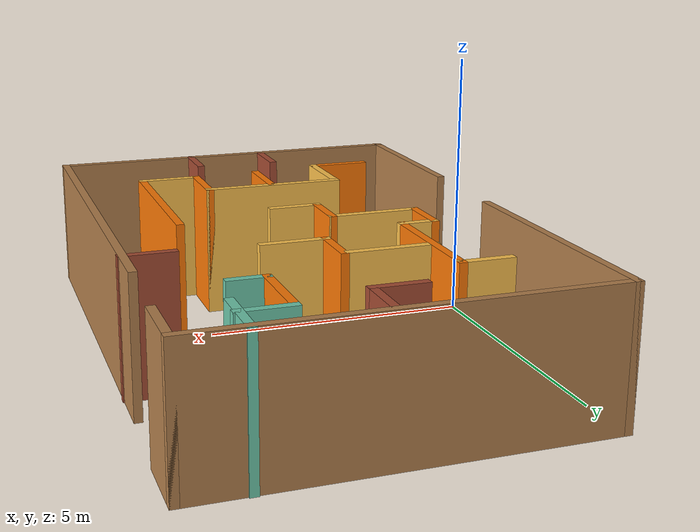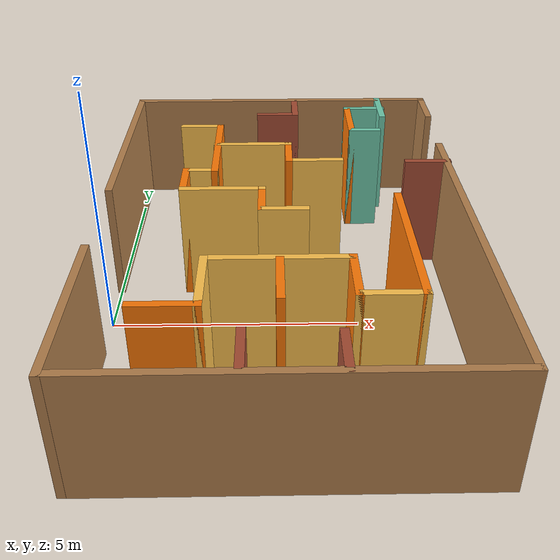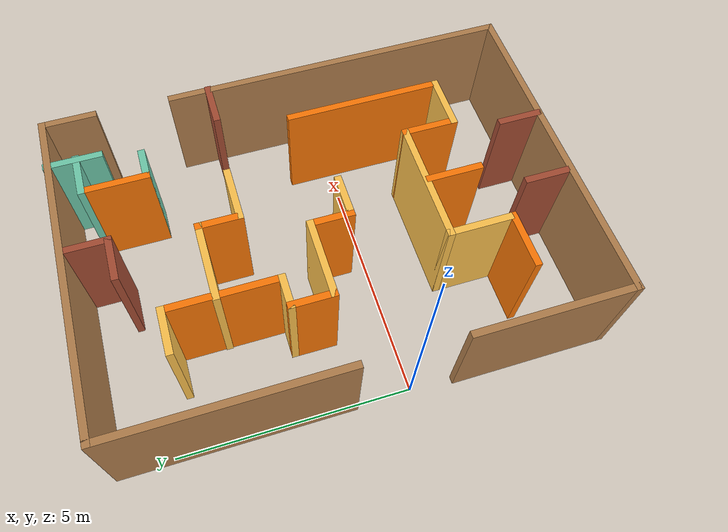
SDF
<?xml version='1.0'?>
<sdf version='1.7'>
  <model name='Maze'>
    <pose>3.51522 0.907565 0 0 -0 0</pose>
    <link name='Wall_10'>
      <collision name='Wall_10_Collision'>
        <geometry>
          <box>
            <size>1 0.15 2.5</size>
          </box>
        </geometry>
        <pose>0 0 1.25 0 -0 0</pose>
      </collision>
      <visual name='Wall_10_Visual'>
        <pose>0 0 1.25 0 -0 0</pose>
        <geometry>
          <box>
            <size>1 0.15 2.5</size>
          </box>
        </geometry>
        <material>
          <script>
            <uri>file://media/materials/scripts/gazebo.material</uri>
            <name>Gazebo/Grey</name>
          </script>
          <ambient>1 0.764706 0.305882 1</ambient>
        </material>
        <meta>
          <layer>0</layer>
        </meta>
      </visual>
      <pose>-1.875 3.53933 0 0 -0 0</pose>
    </link>
    <link name='Wall_11'>
      <collision name='Wall_11_Collision'>
        <geometry>
          <box>
            <size>2.5 0.15 2.5</size>
          </box>
        </geometry>
        <pose>0 0 1.25 0 -0 0</pose>
      </collision>
      <visual name='Wall_11_Visual'>
        <pose>0 0 1.25 0 -0 0</pose>
        <geometry>
          <box>
            <size>2.5 0.15 2.5</size>
          </box>
        </geometry>
        <material>
          <script>
            <uri>file://media/materials/scripts/gazebo.material</uri>
            <name>Gazebo/Grey</name>
          </script>
          <ambient>0.996078 0.47451 0.0196078 1</ambient>
        </material>
        <meta>
          <layer>0</layer>
        </meta>
      </visual>
      <pose>-1.45 2.36433 0 0 -0 -1.5708</pose>
    </link>
    <link name='Wall_12'>
      <collision name='Wall_12_Collision'>
        <geometry>
          <box>
            <size>0.75 0.15 2.5</size>
          </box>
        </geometry>
        <pose>0 0 1.25 0 -0 0</pose>
      </collision>
      <visual name='Wall_12_Visual'>
        <pose>0 0 1.25 0 -0 0</pose>
        <geometry>
          <box>
            <size>0.75 0.15 2.5</size>
          </box>
        </geometry>
        <material>
          <script>
            <uri>file://media/materials/scripts/gazebo.material</uri>
            <name>Gazebo/Grey</name>
          </script>
          <ambient>1 0.764706 0.305882 1</ambient>
        </material>
        <meta>
          <layer>0</layer>
        </meta>
      </visual>
      <pose>-1.75 1.18933 0 0 -0 3.14159</pose>
    </link>
    <link name='Wall_13'>
      <collision name='Wall_13_Collision'>
        <geometry>
          <box>
            <size>1 0.15 2.5</size>
          </box>
        </geometry>
        <pose>0 0 1.25 0 -0 0</pose>
      </collision>
      <visual name='Wall_13_Visual'>
        <pose>0 0 1.25 0 -0 0</pose>
        <geometry>
          <box>
            <size>1 0.15 2.5</size>
          </box>
        </geometry>
        <material>
          <script>
            <uri>file://media/materials/scripts/gazebo.material</uri>
            <name>Gazebo/Grey</name>
          </script>
          <ambient>0.996078 0.47451 0.0196078 1</ambient>
        </material>
        <meta>
          <layer>0</layer>
        </meta>
      </visual>
      <pose>-2.05 0.764334 0 0 -0 -1.5708</pose>
    </link>
    <link name='Wall_14'>
      <collision name='Wall_14_Collision'>
        <geometry>
          <box>
            <size>1.75 0.15 2.5</size>
          </box>
        </geometry>
        <pose>0 0 1.25 0 -0 0</pose>
      </collision>
      <visual name='Wall_14_Visual'>
        <pose>0 0 1.25 0 -0 0</pose>
        <geometry>
          <box>
            <size>1.75 0.15 2.5</size>
          </box>
        </geometry>
        <material>
          <script>
            <uri>file://media/materials/scripts/gazebo.material</uri>
            <name>Gazebo/Grey</name>
          </script>
          <ambient>1 0.764706 0.305882 1</ambient>
        </material>
        <meta>
          <layer>0</layer>
        </meta>
      </visual>
      <pose>-1.25 0.339334 0 0 -0 0</pose>
    </link>
    <link name='Wall_15'>
      <collision name='Wall_15_Collision'>
        <geometry>
          <box>
            <size>1 0.15 2.5</size>
          </box>
        </geometry>
        <pose>0 0 1.25 0 -0 0</pose>
      </collision>
      <visual name='Wall_15_Visual'>
        <pose>0 0 1.25 0 -0 0</pose>
        <geometry>
          <box>
            <size>1 0.15 2.5</size>
          </box>
        </geometry>
        <material>
          <script>
            <uri>file://media/materials/scripts/gazebo.material</uri>
            <name>Gazebo/Grey</name>
          </script>
          <ambient>0.996078 0.47451 0.0196078 1</ambient>
        </material>
        <meta>
          <layer>0</layer>
        </meta>
      </visual>
      <pose>-0.45 -0.085666 0 0 -0 -1.5708</pose>
    </link>
    <link name='Wall_16'>
      <collision name='Wall_16_Collision'>
        <geometry>
          <box>
            <size>1 0.15 2.5</size>
          </box>
        </geometry>
        <pose>0 0 1.25 0 -0 0</pose>
      </collision>
      <visual name='Wall_16_Visual'>
        <pose>0 0 1.25 0 -0 0</pose>
        <geometry>
          <box>
            <size>1 0.15 2.5</size>
          </box>
        </geometry>
        <material>
          <script>
            <uri>file://media/materials/scripts/gazebo.material</uri>
            <name>Gazebo/Grey</name>
          </script>
          <ambient>1 0.764706 0.305882 1</ambient>
        </material>
        <meta>
          <layer>0</layer>
        </meta>
      </visual>
      <pose>-0.025 -0.510666 0 0 -0 0</pose>
    </link>
    <link name='Wall_2'>
      <collision name='Wall_2_Collision'>
        <geometry>
          <box>
            <size>5 0.15 2.5</size>
          </box>
        </geometry>
        <pose>0 0 1.25 0 -0 0</pose>
      </collision>
      <visual name='Wall_2_Visual'>
        <pose>0 0 1.25 0 -0 0</pose>
        <geometry>
          <box>
            <size>5 0.15 2.5</size>
          </box>
        </geometry>
        <material>
          <script>
            <uri>file://media/materials/scripts/gazebo.material</uri>
            <name>Gazebo/Wood</name>
          </script>
          <ambient>1 1 1 1</ambient>
        </material>
        <meta>
          <layer>0</layer>
        </meta>
      </visual>
      <pose>-3.52667 2.775 0 0 -0 1.5708</pose>
    </link>
    <link name='Wall_20'>
      <collision name='Wall_20_Collision'>
        <geometry>
          <box>
            <size>1 0.15 2.5</size>
          </box>
        </geometry>
        <pose>0 0 1.25 0 -0 0</pose>
      </collision>
      <visual name='Wall_20_Visual'>
        <pose>0 0 1.25 0 -0 0</pose>
        <geometry>
          <box>
            <size>1 0.15 2.5</size>
          </box>
        </geometry>
        <material>
          <script>
            <uri>file://media/materials/scripts/gazebo.material</uri>
            <name>Gazebo/Bricks</name>
          </script>
          <ambient>1 1 1 1</ambient>
        </material>
        <meta>
          <layer>0</layer>
        </meta>
      </visual>
      <pose>0.337333 4.67833 0 0 -0 -1.5708</pose>
    </link>
    <link name='Wall_21'>
      <collision name='Wall_21_Collision'>
        <geometry>
          <box>
            <size>1 0.15 2.5</size>
          </box>
        </geometry>
        <pose>0 0 1.25 0 -0 0</pose>
      </collision>
      <visual name='Wall_21_Visual'>
        <pose>0 0 1.25 0 -0 0</pose>
        <geometry>
          <box>
            <size>1 0.15 2.5</size>
          </box>
        </geometry>
        <material>
          <script>
            <uri>file://media/materials/scripts/gazebo.material</uri>
            <name>Gazebo/Bricks</name>
          </script>
          <ambient>1 1 1 1</ambient>
        </material>
        <meta>
          <layer>0</layer>
        </meta>
      </visual>
      <pose>-0.087667 4.25333 0 0 -0 3.14159</pose>
    </link>
    <link name='Wall_23'>
      <collision name='Wall_23_Collision'>
        <geometry>
          <box>
            <size>1.25 0.15 2.5</size>
          </box>
        </geometry>
        <pose>0 0 1.25 0 -0 0</pose>
      </collision>
      <visual name='Wall_23_Visual'>
        <pose>0 0 1.25 0 -0 0</pose>
        <geometry>
          <box>
            <size>1.25 0.15 2.5</size>
          </box>
        </geometry>
        <material>
          <script>
            <uri>file://media/materials/scripts/gazebo.material</uri>
            <name>Gazebo/Grey</name>
          </script>
          <ambient>0.996078 0.47451 0.0196078 1</ambient>
        </material>
        <meta>
          <layer>0</layer>
        </meta>
      </visual>
      <pose>-1.99533 -3.606 0 0 -0 0</pose>
    </link>
    <link name='Wall_24'>
      <collision name='Wall_24_Collision'>
        <geometry>
          <box>
            <size>1.5 0.15 2.5</size>
          </box>
        </geometry>
        <pose>0 0 1.25 0 -0 0</pose>
      </collision>
      <visual name='Wall_24_Visual'>
        <pose>0 0 1.25 0 -0 0</pose>
        <geometry>
          <box>
            <size>1.5 0.15 2.5</size>
          </box>
        </geometry>
        <material>
          <script>
            <uri>file://media/materials/scripts/gazebo.material</uri>
            <name>Gazebo/Grey</name>
          </script>
          <ambient>1 0.764706 0.305882 1</ambient>
        </material>
        <meta>
          <layer>0</layer>
        </meta>
      </visual>
      <pose>-1.44533 -2.931 0 0 -0 1.5708</pose>
    </link>
    <link name='Wall_25'>
      <collision name='Wall_25_Collision'>
        <geometry>
          <box>
            <size>2.75 0.15 2.5</size>
          </box>
        </geometry>
        <pose>0 0 1.25 0 -0 0</pose>
      </collision>
      <visual name='Wall_25_Visual'>
        <pose>0 0 1.25 0 -0 0</pose>
        <geometry>
          <box>
            <size>2.75 0.15 2.5</size>
          </box>
        </geometry>
        <material>
          <script>
            <uri>file://media/materials/scripts/gazebo.material</uri>
            <name>Gazebo/Grey</name>
          </script>
          <ambient>1 0.764706 0.305882 1</ambient>
        </material>
        <meta>
          <layer>0</layer>
        </meta>
      </visual>
      <pose>-0.145333 -2.256 0 0 -0 0</pose>
    </link>
    <link name='Wall_26'>
      <collision name='Wall_26_Collision'>
        <geometry>
          <box>
            <size>1.25 0.15 2.5</size>
          </box>
        </geometry>
        <pose>0 0 1.25 0 -0 0</pose>
      </collision>
      <visual name='Wall_26_Visual'>
        <pose>0 0 1.25 0 -0 0</pose>
        <geometry>
          <box>
            <size>1.25 0.15 2.5</size>
          </box>
        </geometry>
        <material>
          <script>
            <uri>file://media/materials/scripts/gazebo.material</uri>
            <name>Gazebo/Grey</name>
          </script>
          <ambient>0.996078 0.47451 0.0196078 1</ambient>
        </material>
        <meta>
          <layer>0</layer>
        </meta>
      </visual>
      <pose>1.15467 -2.806 0 0 -0 -1.5708</pose>
    </link>
    <link name='Wall_27'>
      <collision name='Wall_27_Collision'>
        <geometry>
          <box>
            <size>1.25 0.15 2.5</size>
          </box>
        </geometry>
        <pose>0 0 1.25 0 -0 0</pose>
      </collision>
      <visual name='Wall_27_Visual'>
        <pose>0 0 1.25 0 -0 0</pose>
        <geometry>
          <box>
            <size>1.25 0.15 2.5</size>
          </box>
        </geometry>
        <material>
          <script>
            <uri>file://media/materials/scripts/gazebo.material</uri>
            <name>Gazebo/Grey</name>
          </script>
          <ambient>1 0.764706 0.305882 1</ambient>
        </material>
        <meta>
          <layer>0</layer>
        </meta>
      </visual>
      <pose>1.70467 -3.356 0 0 -0 0</pose>
    </link>
    <link name='Wall_28'>
      <collision name='Wall_28_Collision'>
        <geometry>
          <box>
            <size>3.5 0.15 2.5</size>
          </box>
        </geometry>
        <pose>0 0 1.25 0 -0 0</pose>
      </collision>
      <visual name='Wall_28_Visual'>
        <pose>0 0 1.25 0 -0 0</pose>
        <geometry>
          <box>
            <size>3.5 0.15 2.5</size>
          </box>
        </geometry>
        <material>
          <script>
            <uri>file://media/materials/scripts/gazebo.material</uri>
            <name>Gazebo/Grey</name>
          </script>
          <ambient>0.996078 0.47451 0.0196078 1</ambient>
        </material>
        <meta>
          <layer>0</layer>
        </meta>
      </visual>
      <pose>2.25467 -1.681 0 0 -0 1.5708</pose>
    </link>
    <link name='Wall_3'>
      <collision name='Wall_3_Collision'>
        <geometry>
          <box>
            <size>7.25 0.15 2.5</size>
          </box>
        </geometry>
        <pose>0 0 1.25 0 -0 0</pose>
      </collision>
      <visual name='Wall_3_Visual'>
        <pose>0 0 1.25 0 -0 0</pose>
        <geometry>
          <box>
            <size>7.25 0.15 2.5</size>
          </box>
        </geometry>
        <material>
          <script>
            <uri>file://media/materials/scripts/gazebo.material</uri>
            <name>Gazebo/Wood</name>
          </script>
          <ambient>1 1 1 1</ambient>
        </material>
        <meta>
          <layer>0</layer>
        </meta>
      </visual>
      <pose>0.023333 5.2 0 0 -0 0</pose>
    </link>
    <link name='Wall_30'>
      <collision name='Wall_30_Collision'>
        <geometry>
          <box>
            <size>1.25 0.15 2.5</size>
          </box>
        </geometry>
        <pose>0 0 1.25 0 -0 0</pose>
      </collision>
      <visual name='Wall_30_Visual'>
        <pose>0 0 1.25 0 -0 0</pose>
        <geometry>
          <box>
            <size>1.25 0.15 2.5</size>
          </box>
        </geometry>
        <material>
          <script>
            <uri>file://media/materials/scripts/gazebo.material</uri>
            <name>Gazebo/Grey</name>
          </script>
          <ambient>0.996078 0.47451 0.0196078 1</ambient>
        </material>
        <meta>
          <layer>0</layer>
        </meta>
      </visual>
      <pose>-0.122667 -2.868 0 0 -0 -1.5708</pose>
    </link>
    <link name='Wall_32'>
      <collision name='Wall_32_Collision'>
        <geometry>
          <box>
            <size>1 0.15 2.5</size>
          </box>
        </geometry>
        <pose>0 0 1.25 0 -0 0</pose>
      </collision>
      <visual name='Wall_32_Visual'>
        <pose>0 0 1.25 0 -0 0</pose>
        <geometry>
          <box>
            <size>1 0.15 2.5</size>
          </box>
        </geometry>
        <material>
          <script>
            <uri>file://media/materials/scripts/gazebo.material</uri>
            <name>Gazebo/Bricks</name>
          </script>
          <ambient>1 1 1 1</ambient>
        </material>
        <meta>
          <layer>0</layer>
        </meta>
      </visual>
      <pose>-0.736 -4.68367 0 0 -0 1.5708</pose>
    </link>
    <link name='Wall_34'>
      <collision name='Wall_34_Collision'>
        <geometry>
          <box>
            <size>1 0.15 2.5</size>
          </box>
        </geometry>
        <pose>0 0 1.25 0 -0 0</pose>
      </collision>
      <visual name='Wall_34_Visual'>
        <pose>0 0 1.25 0 -0 0</pose>
        <geometry>
          <box>
            <size>1 0.15 2.5</size>
          </box>
        </geometry>
        <material>
          <script>
            <uri>file://media/materials/scripts/gazebo.material</uri>
            <name>Gazebo/Bricks</name>
          </script>
          <ambient>1 1 1 1</ambient>
        </material>
        <meta>
          <layer>0</layer>
        </meta>
      </visual>
      <pose>0.828 -4.77567 0 0 -0 1.5708</pose>
    </link>
    <link name='Wall_36'>
      <collision name='Wall_36_Collision'>
        <geometry>
          <box>
            <size>1.75 0.15 2.5</size>
          </box>
        </geometry>
        <pose>0 0 1.25 0 -0 0</pose>
      </collision>
      <visual name='Wall_36_Visual'>
        <pose>0 0 1.25 0 -0 0</pose>
        <geometry>
          <box>
            <size>1.75 0.15 2.5</size>
          </box>
        </geometry>
        <material>
          <script>
            <uri>file://media/materials/scripts/gazebo.material</uri>
            <name>Gazebo/Grey</name>
          </script>
          <ambient>1 0.764706 0.305882 1</ambient>
        </material>
        <meta>
          <layer>0</layer>
        </meta>
      </visual>
      <pose>-0.672 2.49667 0 0 -0 0</pose>
    </link>
    <link name='Wall_37'>
      <collision name='Wall_37_Collision'>
        <geometry>
          <box>
            <size>1 0.15 2.5</size>
          </box>
        </geometry>
        <pose>0 0 1.25 0 -0 0</pose>
      </collision>
      <visual name='Wall_37_Visual'>
        <pose>0 0 1.25 0 -0 0</pose>
        <geometry>
          <box>
            <size>1 0.15 2.5</size>
          </box>
        </geometry>
        <material>
          <script>
            <uri>file://media/materials/scripts/gazebo.material</uri>
            <name>Gazebo/Grey</name>
          </script>
          <ambient>0.996078 0.47451 0.0196078 1</ambient>
        </material>
        <meta>
          <layer>0</layer>
        </meta>
      </visual>
      <pose>0.128 2.07167 0 0 -0 -1.5708</pose>
    </link>
    <link name='Wall_38'>
      <collision name='Wall_38_Collision'>
        <geometry>
          <box>
            <size>1.25 0.15 2.5</size>
          </box>
        </geometry>
        <pose>0 0 1.25 0 -0 0</pose>
      </collision>
      <visual name='Wall_38_Visual'>
        <pose>0 0 1.25 0 -0 0</pose>
        <geometry>
          <box>
            <size>1.25 0.15 2.5</size>
          </box>
        </geometry>
        <material>
          <script>
            <uri>file://media/materials/scripts/gazebo.material</uri>
            <name>Gazebo/Grey</name>
          </script>
          <ambient>1 0.764706 0.305882 1</ambient>
        </material>
        <meta>
          <layer>0</layer>
        </meta>
      </visual>
      <pose>0.678 1.64667 0 0 -0 0</pose>
    </link>
    <link name='Wall_4'>
      <collision name='Wall_4_Collision'>
        <geometry>
          <box>
            <size>1.25 0.15 2.5</size>
          </box>
        </geometry>
        <pose>0 0 1.25 0 -0 0</pose>
      </collision>
      <visual name='Wall_4_Visual'>
        <pose>0 0 1.25 0 -0 0</pose>
        <geometry>
          <box>
            <size>1.25 0.15 2.5</size>
          </box>
        </geometry>
        <material>
          <script>
            <uri>file://media/materials/scripts/gazebo.material</uri>
            <name>Gazebo/Wood</name>
          </script>
          <ambient>1 1 1 1</ambient>
        </material>
        <meta>
          <layer>0</layer>
        </meta>
      </visual>
      <pose>3.57333 4.65 0 0 -0 -1.5708</pose>
    </link>
    <link name='Wall_40'>
      <collision name='Wall_40_Collision'>
        <geometry>
          <box>
            <size>1.25 0.15 2.5</size>
          </box>
        </geometry>
        <pose>0 0 1.25 0 -0 0</pose>
      </collision>
      <visual name='Wall_40_Visual'>
        <pose>0 0 1.25 0 -0 0</pose>
        <geometry>
          <box>
            <size>1.25 0.15 2.5</size>
          </box>
        </geometry>
        <material>
          <script>
            <uri>file://media/materials/scripts/gazebo.material</uri>
            <name>Gazebo/Grey</name>
          </script>
          <ambient>0.435294 0.796078 0.67451 1</ambient>
        </material>
        <meta>
          <layer>0</layer>
        </meta>
      </visual>
      <pose>2.45333 4.676 0 0 -0 -1.5708</pose>
    </link>
    <link name='Wall_42'>
      <collision name='Wall_42_Collision'>
        <geometry>
          <box>
            <size>1 0.15 2.5</size>
          </box>
        </geometry>
        <pose>0 0 1.25 0 -0 0</pose>
      </collision>
      <visual name='Wall_42_Visual'>
        <pose>0 0 1.25 0 -0 0</pose>
        <geometry>
          <box>
            <size>1 0.15 2.5</size>
          </box>
        </geometry>
        <material>
          <script>
            <uri>file://media/materials/scripts/gazebo.material</uri>
            <name>Gazebo/Grey</name>
          </script>
          <ambient>0.435294 0.796078 0.67451 1</ambient>
        </material>
        <meta>
          <layer>0</layer>
        </meta>
      </visual>
      <pose>2.059 4.61267 0 0 -0 3.14159</pose>
    </link>
    <link name='Wall_43'>
      <collision name='Wall_43_Collision'>
        <geometry>
          <box>
            <size>1.5 0.15 2.5</size>
          </box>
        </geometry>
        <pose>0 0 1.25 0 -0 0</pose>
      </collision>
      <visual name='Wall_43_Visual'>
        <pose>0 0 1.25 0 -0 0</pose>
        <geometry>
          <box>
            <size>1.5 0.15 2.5</size>
          </box>
        </geometry>
        <material>
          <script>
            <uri>file://media/materials/scripts/gazebo.material</uri>
            <name>Gazebo/Grey</name>
          </script>
          <ambient>0.996078 0.47451 0.0196078 1</ambient>
        </material>
        <meta>
          <layer>0</layer>
        </meta>
      </visual>
      <pose>1.634 3.93767 0 0 -0 -1.5708</pose>
    </link>
    <link name='Wall_44'>
      <collision name='Wall_44_Collision'>
        <geometry>
          <box>
            <size>0.75 0.15 2.5</size>
          </box>
        </geometry>
        <pose>0 0 1.25 0 -0 0</pose>
      </collision>
      <visual name='Wall_44_Visual'>
        <pose>0 0 1.25 0 -0 0</pose>
        <geometry>
          <box>
            <size>0.75 0.15 2.5</size>
          </box>
        </geometry>
        <material>
          <script>
            <uri>file://media/materials/scripts/gazebo.material</uri>
            <name>Gazebo/Grey</name>
          </script>
          <ambient>0.435294 0.796078 0.67451 1</ambient>
        </material>
        <meta>
          <layer>0</layer>
        </meta>
      </visual>
      <pose>1.934 3.26267 0 0 -0 0</pose>
    </link>
    <link name='Wall_46'>
      <collision name='Wall_46_Collision'>
        <geometry>
          <box>
            <size>1 0.15 2.5</size>
          </box>
        </geometry>
        <pose>0 0 1.25 0 -0 0</pose>
      </collision>
      <visual name='Wall_46_Visual'>
        <pose>0 0 1.25 0 -0 0</pose>
        <geometry>
          <box>
            <size>1 0.15 2.5</size>
          </box>
        </geometry>
        <material>
          <script>
            <uri>file://media/materials/scripts/gazebo.material</uri>
            <name>Gazebo/Bricks</name>
          </script>
          <ambient>1 1 1 1</ambient>
        </material>
        <meta>
          <layer>0</layer>
        </meta>
      </visual>
      <pose>3.12367 1.546 0 0 -0 0</pose>
    </link>
    <link name='Wall_6'>
      <collision name='Wall_6_Collision'>
        <geometry>
          <box>
            <size>7.75 0.15 2.5</size>
          </box>
        </geometry>
        <pose>0 0 1.25 0 -0 0</pose>
      </collision>
      <visual name='Wall_6_Visual'>
        <pose>0 0 1.25 0 -0 0</pose>
        <geometry>
          <box>
            <size>7.75 0.15 2.5</size>
          </box>
        </geometry>
        <material>
          <script>
            <uri>file://media/materials/scripts/gazebo.material</uri>
            <name>Gazebo/Wood</name>
          </script>
          <ambient>1 1 1 1</ambient>
        </material>
        <meta>
          <layer>0</layer>
        </meta>
      </visual>
      <pose>3.52667 -1.426 0 0 -0 -1.5708</pose>
    </link>
    <link name='Wall_7'>
      <collision name='Wall_7_Collision'>
        <geometry>
          <box>
            <size>7.25 0.15 2.5</size>
          </box>
        </geometry>
        <pose>0 0 1.25 0 -0 0</pose>
      </collision>
      <visual name='Wall_7_Visual'>
        <pose>0 0 1.25 0 -0 0</pose>
        <geometry>
          <box>
            <size>7.25 0.15 2.5</size>
          </box>
        </geometry>
        <material>
          <script>
            <uri>file://media/materials/scripts/gazebo.material</uri>
            <name>Gazebo/Wood</name>
          </script>
          <ambient>1 1 1 1</ambient>
        </material>
        <meta>
          <layer>0</layer>
        </meta>
      </visual>
      <pose>-0.023333 -5.226 0 0 -0 3.14159</pose>
    </link>
    <link name='Wall_8'>
      <collision name='Wall_8_Collision'>
        <geometry>
          <box>
            <size>3.5 0.15 2.5</size>
          </box>
        </geometry>
        <pose>0 0 1.25 0 -0 0</pose>
      </collision>
      <visual name='Wall_8_Visual'>
        <pose>0 0 1.25 0 -0 0</pose>
        <geometry>
          <box>
            <size>3.5 0.15 2.5</size>
          </box>
        </geometry>
        <material>
          <script>
            <uri>file://media/materials/scripts/gazebo.material</uri>
            <name>Gazebo/Wood</name>
          </script>
          <ambient>1 1 1 1</ambient>
        </material>
        <meta>
          <layer>0</layer>
        </meta>
      </visual>
      <pose>-3.57333 -3.551 0 0 -0 1.5708</pose>
    </link>
    <static>1</static>
  </model>
</sdf>
